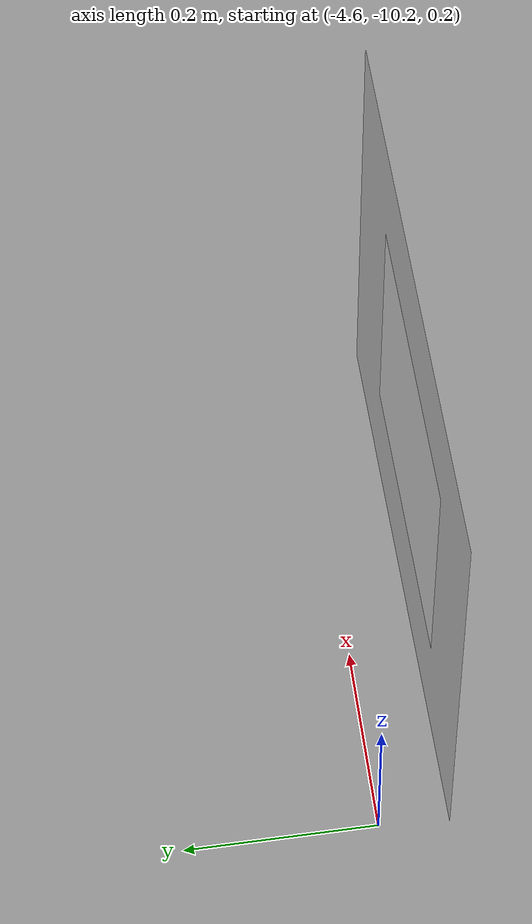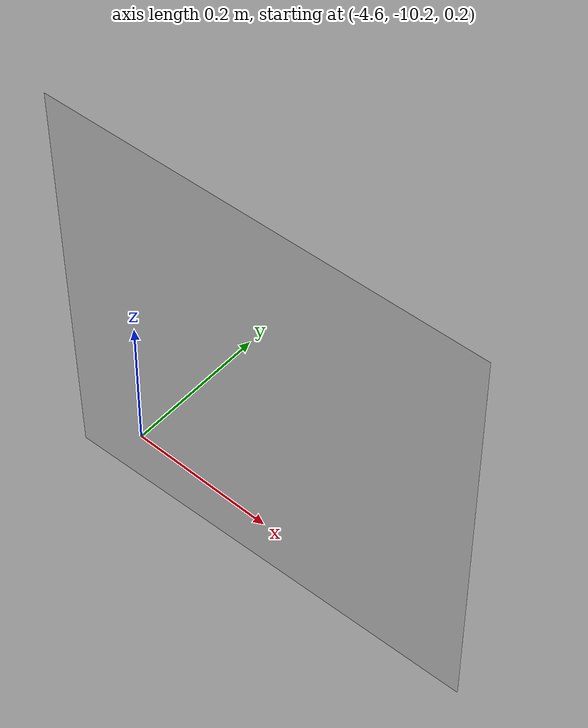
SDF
<sdf version="1.7">
 <world name="default">
  <model name="aruco_visual_marker_0_30cm_clone_4_clone">
   <link name="marker">
    <inertial>
     <mass>1</mass>
     <inertia><ixx>1</ixx><ixy>0</ixy><ixz>0</ixz><iyy>1</iyy><iyz>0</iyz><izz>1</izz></inertia>
    </inertial>
    <visual name="visual">
     <geometry><box><size>0.3 0.3 3.1e-05</size></box></geometry>
     <material>
      <script>
       <uri>model://aruco_visual_marker_0/materials/scripts</uri>
       <uri>model://aruco_visual_marker_0/materials/textures</uri>
       <name>ArucoVisualMarker0/Marker</name>
      </script>
      <ambient>1 1 1 1</ambient>
      <diffuse>1 1 1 1</diffuse>
      <specular>0 0 0 1</specular>
      <emissive>1 1 1 0</emissive>
      <shader type="vertex"><normal_map>__default__</normal_map></shader>
     </material>
    </visual>
    <collision name="collision">
     <geometry><box><size>0.3 0.3 3.1e-05</size></box></geometry>
     <surface>
      <friction>
       <ode><mu>1</mu><mu2>1</mu2><fdir1>0 0 0</fdir1><slip1>0</slip1><slip2>0</slip2></ode>
       <torsional>
        <coefficient>1</coefficient>
        <patch_radius>0</patch_radius>
        <surface_radius>0</surface_radius>
        <use_patch_radius>1</use_patch_radius>
        <ode><slip>0</slip></ode>
       </torsional>
      </friction>
      <bounce><restitution_coefficient>0</restitution_coefficient><threshold>1e+06</threshold></bounce>
      <contact>
       <collide_without_contact>0</collide_without_contact>
       <collide_without_contact_bitmask>1</collide_without_contact_bitmask>
       <collide_bitmask>1</collide_bitmask>
       <ode>
        <soft_cfm>0</soft_cfm>
        <soft_erp>0.2</soft_erp>
        <kp>1e+13</kp>
        <kd>1</kd>
        <max_vel>0.01</max_vel>
        <min_depth>0</min_depth>
       </ode>
       <bullet>
        <split_impulse>1</split_impulse>
        <split_impulse_penetration_threshold>-0.01</split_impulse_penetration_threshold>
        <soft_cfm>0</soft_cfm>
        <soft_erp>0.2</soft_erp>
        <kp>1e+13</kp>
        <kd>1</kd>
       </bullet>
      </contact>
     </surface>
    </collision>
   </link>
   <link name="marker_pad">
    <pose>0 0 -1e-05 0 -0 0</pose>
    <visual name="visual">
     <geometry><box><size>0.559545 0.559545 3.1e-05</size></box></geometry>
     <material>
      <lighting>1</lighting>
      <script><uri>file://media/materials/scripts/gazebo.material</uri><name>Gazebo/White</name></script>
      <ambient>0.3 0.3 0.3 1</ambient>
      <diffuse>0.7 0.7 0.7 1</diffuse>
      <specular>0.01 0.01 0.01 1</specular>
      <emissive>1 1 1 0</emissive>
      <shader type="vertex"><normal_map>__default__</normal_map></shader>
     </material>
    </visual>
    <collision name="collision">
     <geometry><box><size>0.559545 0.559545 3.1e-05</size></box></geometry>
     <surface>
      <friction>
       <ode><mu>1</mu><mu2>1</mu2><fdir1>0 0 0</fdir1><slip1>0</slip1><slip2>0</slip2></ode>
       <torsional>
        <coefficient>1</coefficient>
        <patch_radius>0</patch_radius>
        <surface_radius>0</surface_radius>
        <use_patch_radius>1</use_patch_radius>
        <ode><slip>0</slip></ode>
       </torsional>
      </friction>
      <bounce><restitution_coefficient>0</restitution_coefficient><threshold>1e+06</threshold></bounce>
      <contact>
       <collide_without_contact>0</collide_without_contact>
       <collide_without_contact_bitmask>1</collide_without_contact_bitmask>
       <collide_bitmask>1</collide_bitmask>
       <ode>
        <soft_cfm>0</soft_cfm>
        <soft_erp>0.2</soft_erp>
        <kp>1e+13</kp>
        <kd>1</kd>
        <max_vel>0.01</max_vel>
        <min_depth>0</min_depth>
       </ode>
       <bullet>
        <split_impulse>1</split_impulse>
        <split_impulse_penetration_threshold>-0.01</split_impulse_penetration_threshold>
        <soft_cfm>0</soft_cfm>
        <soft_erp>0.2</soft_erp>
        <kp>1e+13</kp>
        <kd>1</kd>
       </bullet>
      </contact>
     </surface>
    </collision>
   </link>
   <joint name="marker_JOINT_marker_pad" type="revolute">
    <parent>marker</parent>
    <child>marker_pad</child>
    <axis>
     <xyz>0 0 1</xyz>
     <limit><lower>0</lower><upper>0</upper><effort>-1</effort><velocity>-1</velocity></limit>
     <dynamics>
      <spring_reference>0</spring_reference>
      <spring_stiffness>0</spring_stiffness>
      <damping>0</damping>
      <friction>0</friction>
     </dynamics>
    </axis>
    <physics>
     <ode><limit><cfm>0</cfm><erp>0.2</erp></limit><suspension><cfm>0</cfm><erp>0.2</erp></suspension></ode>
    </physics>
   </joint>
   <static>1</static>
   <pose>-4.35161 -10.2625 0.526836 1.59 -1.55097 3.14159</pose>
  </model>
 </world>
</sdf>
